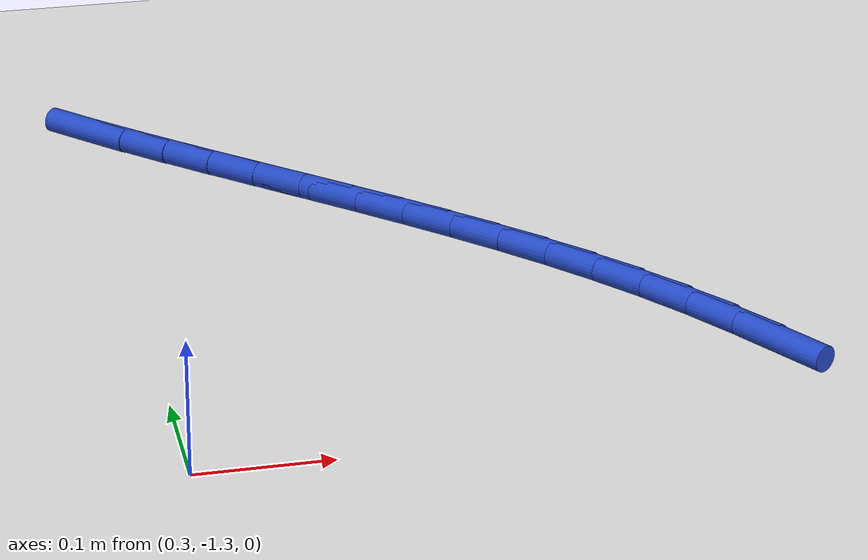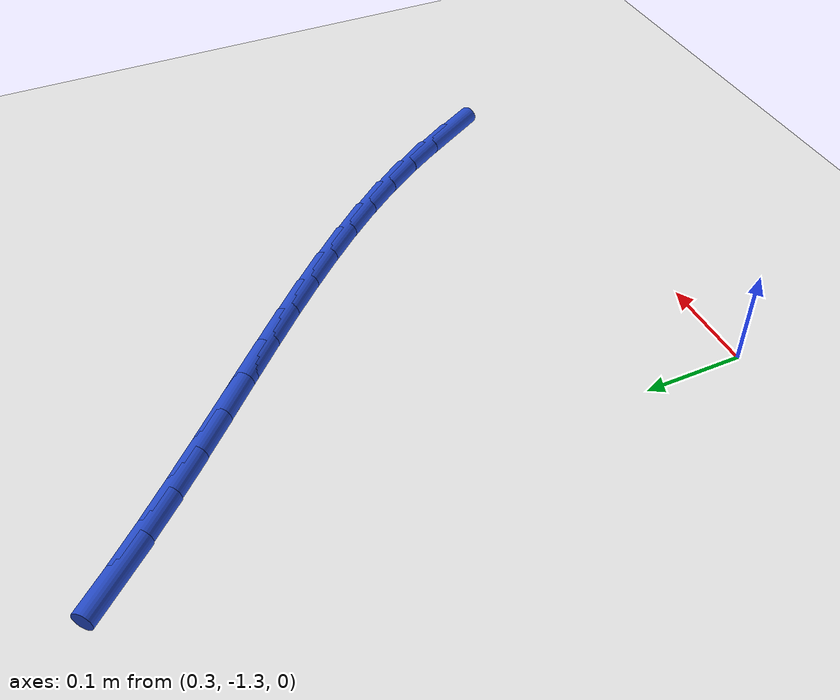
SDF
<sdf version="1.6">
 <world name="default">
  <model name="ground_plane">
   <static>1</static>
   <link name="link">
    <collision name="collision">
     <geometry><plane><normal>0 0 1</normal><size>100 100</size></plane></geometry>
     <surface><friction><ode><mu>100</mu><mu2>50</mu2></ode></friction></surface>
    </collision>
    <visual name="visual">
     <cast_shadows>0</cast_shadows>
     <geometry><plane><normal>0 0 1</normal><size>100 100</size></plane></geometry>
     <material>
      <script><uri>file://media/materials/scripts/gazebo.material</uri><name>Gazebo/WhiteGlow</name></script>
     </material>
    </visual>
   </link>
  </model>
  <model name="line">
   <link name="link_157">
    <pose>0.7428171400419011 -1.2120075427703663 0.01 0 1.57 -1.0374920961330225</pose>
    <collision name="collision">
     <geometry><cylinder><radius>0.01</radius><length>0.08</length></cylinder></geometry>
    </collision>
    <visual name="visual">
     <material>
      <script><name>Gazebo/Blue</name><uri>file://media/materials/scripts/gazebo.material</uri></script>
     </material>
     <geometry><cylinder><radius>0.01</radius><length>0.08</length></cylinder></geometry>
    </visual>
   </link>
   <link name="link_158">
    <pose>0.720088239602283 -1.173507748657314 0.01 0 1.57 -1.0049213979652647</pose>
    <collision name="collision">
     <geometry><cylinder><radius>0.01</radius><length>0.08</length></cylinder></geometry>
    </collision>
    <visual name="visual">
     <material>
      <script><name>Gazebo/Blue</name><uri>file://media/materials/scripts/gazebo.material</uri></script>
     </material>
     <geometry><cylinder><radius>0.01</radius><length>0.08</length></cylinder></geometry>
    </visual>
   </link>
   <link name="link_159">
    <pose>0.6962203998588625 -1.135930307329641 0.01 0 1.57 -0.956088751328809</pose>
    <collision name="collision">
     <geometry><cylinder><radius>0.01</radius><length>0.08</length></cylinder></geometry>
    </collision>
    <visual name="visual">
     <material>
      <script><name>Gazebo/Blue</name><uri>file://media/materials/scripts/gazebo.material</uri></script>
     </material>
     <geometry><cylinder><radius>0.01</radius><length>0.08</length></cylinder></geometry>
    </visual>
   </link>
   <link name="link_160">
    <pose>0.6706689423924309 -1.0997358375432587 0.01 0 1.57 -0.9110054513598977</pose>
    <collision name="collision">
     <geometry><cylinder><radius>0.01</radius><length>0.08</length></cylinder></geometry>
    </collision>
    <visual name="visual">
     <material>
      <script><name>Gazebo/Blue</name><uri>file://media/materials/scripts/gazebo.material</uri></script>
     </material>
     <geometry><cylinder><radius>0.01</radius><length>0.08</length></cylinder></geometry>
    </visual>
   </link>
   <link name="link_161">
    <pose>0.6435749350049517 -1.0648105225397146 0.01 0 1.57 -0.8716234642313077</pose>
    <collision name="collision">
     <geometry><cylinder><radius>0.01</radius><length>0.08</length></cylinder></geometry>
    </collision>
    <visual name="visual">
     <material>
      <script><name>Gazebo/Blue</name><uri>file://media/materials/scripts/gazebo.material</uri></script>
     </material>
     <geometry><cylinder><radius>0.01</radius><length>0.08</length></cylinder></geometry>
    </visual>
   </link>
   <link name="link_162">
    <pose>0.6151376167247318 -1.0309918167199243 0.01 0 1.57 -0.8380785035271867</pose>
    <collision name="collision">
     <geometry><cylinder><radius>0.01</radius><length>0.08</length></cylinder></geometry>
    </collision>
    <visual name="visual">
     <material>
      <script><name>Gazebo/Blue</name><uri>file://media/materials/scripts/gazebo.material</uri></script>
     </material>
     <geometry><cylinder><radius>0.01</radius><length>0.08</length></cylinder></geometry>
    </visual>
   </link>
   <link name="link_163">
    <pose>0.5855562265800779 -0.9981171744848019 0.01 0 1.57 -0.8104155810426824</pose>
    <collision name="collision">
     <geometry><cylinder><radius>0.01</radius><length>0.08</length></cylinder></geometry>
    </collision>
    <visual name="visual">
     <material>
      <script><name>Gazebo/Blue</name><uri>file://media/materials/scripts/gazebo.material</uri></script>
     </material>
     <geometry><cylinder><radius>0.01</radius><length>0.08</length></cylinder></geometry>
    </visual>
   </link>
   <link name="link_164">
    <pose>0.5550300035992969 -0.9660240502352627 0.01 0 1.57 -0.788622822725605</pose>
    <collision name="collision">
     <geometry><cylinder><radius>0.01</radius><length>0.08</length></cylinder></geometry>
    </collision>
    <visual name="visual">
     <material>
      <script><name>Gazebo/Blue</name><uri>file://media/materials/scripts/gazebo.material</uri></script>
     </material>
     <geometry><cylinder><radius>0.01</radius><length>0.08</length></cylinder></geometry>
    </visual>
   </link>
   <link name="link_165">
    <pose>0.5237581868106951 -0.9345498983722215 0.01 0 1.57 -0.7726601705902686</pose>
    <collision name="collision">
     <geometry><cylinder><radius>0.01</radius><length>0.08</length></cylinder></geometry>
    </collision>
    <visual name="visual">
     <material>
      <script><name>Gazebo/Blue</name><uri>file://media/materials/scripts/gazebo.material</uri></script>
     </material>
     <geometry><cylinder><radius>0.01</radius><length>0.08</length></cylinder></geometry>
    </visual>
   </link>
   <link name="link_166">
    <pose>0.4919400152425804 -0.9035321732965941 0.01 0 1.57 -0.7624817855452058</pose>
    <collision name="collision">
     <geometry><cylinder><radius>0.01</radius><length>0.08</length></cylinder></geometry>
    </collision>
    <visual name="visual">
     <material>
      <script><name>Gazebo/Blue</name><uri>file://media/materials/scripts/gazebo.material</uri></script>
     </material>
     <geometry><cylinder><radius>0.01</radius><length>0.08</length></cylinder></geometry>
    </visual>
   </link>
   <link name="link_167">
    <pose>0.45977472792325785 -0.8728083294092936 0.01 0 1.57 -0.7580520314765582</pose>
    <collision name="collision">
     <geometry><cylinder><radius>0.01</radius><length>0.08</length></cylinder></geometry>
    </collision>
    <visual name="visual">
     <material>
      <script><name>Gazebo/Blue</name><uri>file://media/materials/scripts/gazebo.material</uri></script>
     </material>
     <geometry><cylinder><radius>0.01</radius><length>0.08</length></cylinder></geometry>
    </visual>
   </link>
   <link name="link_168">
    <pose>0.42746156388103485 -0.8422158211112359 0.01 0 1.57 -0.7593553942377974</pose>
    <collision name="collision">
     <geometry><cylinder><radius>0.01</radius><length>0.08</length></cylinder></geometry>
    </collision>
    <visual name="visual">
     <material>
      <script><name>Gazebo/Blue</name><uri>file://media/materials/scripts/gazebo.material</uri></script>
     </material>
     <geometry><cylinder><radius>0.01</radius><length>0.08</length></cylinder></geometry>
    </visual>
   </link>
   <link name="link_169">
    <pose>0.3951997621442179 -0.8115921028033357 0.01 0 1.57 -0.7664007408093912</pose>
    <collision name="collision">
     <geometry><cylinder><radius>0.01</radius><length>0.08</length></cylinder></geometry>
    </collision>
    <visual name="visual">
     <material>
      <script><name>Gazebo/Blue</name><uri>file://media/materials/scripts/gazebo.material</uri></script>
     </material>
     <geometry><cylinder><radius>0.01</radius><length>0.08</length></cylinder></geometry>
    </visual>
   </link>
   <link name="link_170">
    <pose>0.3631885617411143 -0.7807746288865085 0.01 0 1.57 -0.7792201264158717</pose>
    <collision name="collision">
     <geometry><cylinder><radius>0.01</radius><length>0.08</length></cylinder></geometry>
    </collision>
    <visual name="visual">
     <material>
      <script><name>Gazebo/Blue</name><uri>file://media/materials/scripts/gazebo.material</uri></script>
     </material>
     <geometry><cylinder><radius>0.01</radius><length>0.08</length></cylinder></geometry>
    </visual>
   </link>
   <link name="link_171">
    <pose>0.33162720170003024 -0.7496008537616682 0.01 0 1.57 -0.7978620574416592</pose>
    <collision name="collision">
     <geometry><cylinder><radius>0.01</radius><length>0.08</length></cylinder></geometry>
    </collision>
    <visual name="visual">
     <material>
      <script><name>Gazebo/Blue</name><uri>file://media/materials/scripts/gazebo.material</uri></script>
     </material>
     <geometry><cylinder><radius>0.01</radius><length>0.08</length></cylinder></geometry>
    </visual>
   </link>
   <link name="link_172">
    <pose>0.3007149210492732 -0.7179082318297311 0.01 0 1.57 -0.8223788454039599</pose>
    <collision name="collision">
     <geometry><cylinder><radius>0.01</radius><length>0.08</length></cylinder></geometry>
    </collision>
    <visual name="visual">
     <material>
      <script><name>Gazebo/Blue</name><uri>file://media/materials/scripts/gazebo.material</uri></script>
     </material>
     <geometry><cylinder><radius>0.01</radius><length>0.08</length></cylinder></geometry>
    </visual>
   </link>
  </model>
 </world>
</sdf>
